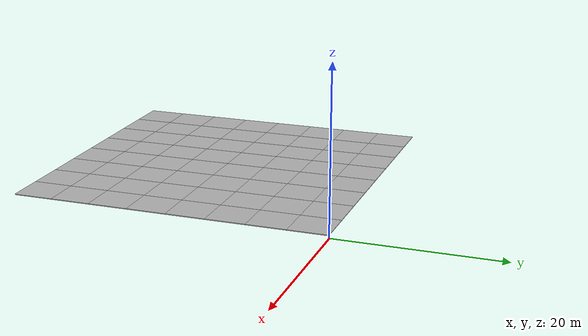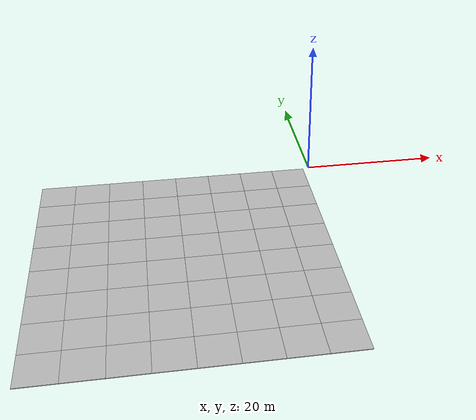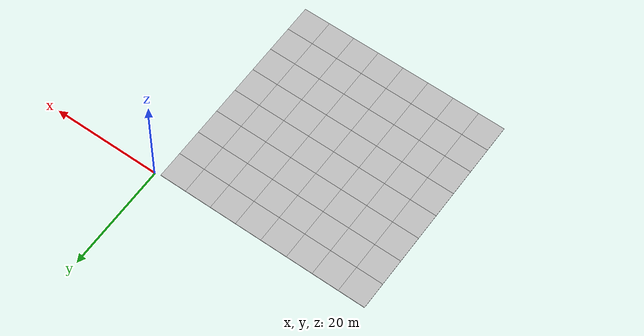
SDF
<sdf version="1.7">
 <world name="default">
  <model name="mud_plane_80x80_2">
   <model name="mud_plane_40x40">
    <model name="mud_plane_20x20">
     <model name="mud_plane">
      <static>1</static>
      <link name="link">
       <collision name="collision"><geometry><box><size>10 10 0.1</size></box></geometry></collision>
       <visual name="visual_1">
        <pose>-2.5 2.5 -0.05 0 -0 0</pose>
        <cast_shadows>0</cast_shadows>
        <geometry><box><size>5 5 0.1</size></box></geometry>
        <material>
         <script>
          <uri>model://mud_plane/materials/scripts</uri>
          <uri>model://mud_plane/materials/textures</uri>
          <name>vrc/mud</name>
         </script>
        </material>
       </visual>
       <visual name="visual_2">
        <pose>2.5 2.5 -0.05 0 -0 0</pose>
        <cast_shadows>0</cast_shadows>
        <geometry><box><size>5 5 0.1</size></box></geometry>
        <material>
         <script>
          <uri>model://mud_plane/materials/scripts</uri>
          <uri>model://mud_plane/materials/textures</uri>
          <name>vrc/mud</name>
         </script>
        </material>
       </visual>
       <visual name="visual_3">
        <pose>2.5 -2.5 -0.05 0 -0 0</pose>
        <cast_shadows>0</cast_shadows>
        <geometry><box><size>5 5 0.1</size></box></geometry>
        <material>
         <script>
          <uri>model://mud_plane/materials/scripts</uri>
          <uri>model://mud_plane/materials/textures</uri>
          <name>vrc/mud</name>
         </script>
        </material>
       </visual>
       <visual name="visual_4">
        <pose>-2.5 -2.5 -0.05 0 -0 0</pose>
        <cast_shadows>0</cast_shadows>
        <geometry><box><size>5 5 0.1</size></box></geometry>
        <material>
         <script>
          <uri>model://mud_plane/materials/scripts</uri>
          <uri>model://mud_plane/materials/textures</uri>
          <name>vrc/mud</name>
         </script>
        </material>
       </visual>
      </link>
      <pose>-4.99986 -4.99991 0 0 -0 0</pose>
     </model>
     <model name="mud_plane_0">
      <static>1</static>
      <link name="link">
       <collision name="collision"><geometry><box><size>10 10 0.1</size></box></geometry></collision>
       <visual name="visual_1">
        <pose>-2.5 2.5 -0.05 0 -0 0</pose>
        <cast_shadows>0</cast_shadows>
        <geometry><box><size>5 5 0.1</size></box></geometry>
        <material>
         <script>
          <uri>model://mud_plane/materials/scripts</uri>
          <uri>model://mud_plane/materials/textures</uri>
          <name>vrc/mud</name>
         </script>
        </material>
       </visual>
       <visual name="visual_2">
        <pose>2.5 2.5 -0.05 0 -0 0</pose>
        <cast_shadows>0</cast_shadows>
        <geometry><box><size>5 5 0.1</size></box></geometry>
        <material>
         <script>
          <uri>model://mud_plane/materials/scripts</uri>
          <uri>model://mud_plane/materials/textures</uri>
          <name>vrc/mud</name>
         </script>
        </material>
       </visual>
       <visual name="visual_3">
        <pose>2.5 -2.5 -0.05 0 -0 0</pose>
        <cast_shadows>0</cast_shadows>
        <geometry><box><size>5 5 0.1</size></box></geometry>
        <material>
         <script>
          <uri>model://mud_plane/materials/scripts</uri>
          <uri>model://mud_plane/materials/textures</uri>
          <name>vrc/mud</name>
         </script>
        </material>
       </visual>
       <visual name="visual_4">
        <pose>-2.5 -2.5 -0.05 0 -0 0</pose>
        <cast_shadows>0</cast_shadows>
        <geometry><box><size>5 5 0.1</size></box></geometry>
        <material>
         <script>
          <uri>model://mud_plane/materials/scripts</uri>
          <uri>model://mud_plane/materials/textures</uri>
          <name>vrc/mud</name>
         </script>
        </material>
       </visual>
      </link>
      <pose>-4.99946 4.99954 0 0 -0 0</pose>
     </model>
     <model name="mud_plane_1">
      <static>1</static>
      <link name="link">
       <collision name="collision"><geometry><box><size>10 10 0.1</size></box></geometry></collision>
       <visual name="visual_1">
        <pose>-2.5 2.5 -0.05 0 -0 0</pose>
        <cast_shadows>0</cast_shadows>
        <geometry><box><size>5 5 0.1</size></box></geometry>
        <material>
         <script>
          <uri>model://mud_plane/materials/scripts</uri>
          <uri>model://mud_plane/materials/textures</uri>
          <name>vrc/mud</name>
         </script>
        </material>
       </visual>
       <visual name="visual_2">
        <pose>2.5 2.5 -0.05 0 -0 0</pose>
        <cast_shadows>0</cast_shadows>
        <geometry><box><size>5 5 0.1</size></box></geometry>
        <material>
         <script>
          <uri>model://mud_plane/materials/scripts</uri>
          <uri>model://mud_plane/materials/textures</uri>
          <name>vrc/mud</name>
         </script>
        </material>
       </visual>
       <visual name="visual_3">
        <pose>2.5 -2.5 -0.05 0 -0 0</pose>
        <cast_shadows>0</cast_shadows>
        <geometry><box><size>5 5 0.1</size></box></geometry>
        <material>
         <script>
          <uri>model://mud_plane/materials/scripts</uri>
          <uri>model://mud_plane/materials/textures</uri>
          <name>vrc/mud</name>
         </script>
        </material>
       </visual>
       <visual name="visual_4">
        <pose>-2.5 -2.5 -0.05 0 -0 0</pose>
        <cast_shadows>0</cast_shadows>
        <geometry><box><size>5 5 0.1</size></box></geometry>
        <material>
         <script>
          <uri>model://mud_plane/materials/scripts</uri>
          <uri>model://mud_plane/materials/textures</uri>
          <name>vrc/mud</name>
         </script>
        </material>
       </visual>
      </link>
      <pose>4.99964 -4.99949 0 0 -0 0</pose>
     </model>
     <model name="mud_plane_2">
      <static>1</static>
      <link name="link">
       <collision name="collision"><geometry><box><size>10 10 0.1</size></box></geometry></collision>
       <visual name="visual_1">
        <pose>-2.5 2.5 -0.05 0 -0 0</pose>
        <cast_shadows>0</cast_shadows>
        <geometry><box><size>5 5 0.1</size></box></geometry>
        <material>
         <script>
          <uri>model://mud_plane/materials/scripts</uri>
          <uri>model://mud_plane/materials/textures</uri>
          <name>vrc/mud</name>
         </script>
        </material>
       </visual>
       <visual name="visual_2">
        <pose>2.5 2.5 -0.05 0 -0 0</pose>
        <cast_shadows>0</cast_shadows>
        <geometry><box><size>5 5 0.1</size></box></geometry>
        <material>
         <script>
          <uri>model://mud_plane/materials/scripts</uri>
          <uri>model://mud_plane/materials/textures</uri>
          <name>vrc/mud</name>
         </script>
        </material>
       </visual>
       <visual name="visual_3">
        <pose>2.5 -2.5 -0.05 0 -0 0</pose>
        <cast_shadows>0</cast_shadows>
        <geometry><box><size>5 5 0.1</size></box></geometry>
        <material>
         <script>
          <uri>model://mud_plane/materials/scripts</uri>
          <uri>model://mud_plane/materials/textures</uri>
          <name>vrc/mud</name>
         </script>
        </material>
       </visual>
       <visual name="visual_4">
        <pose>-2.5 -2.5 -0.05 0 -0 0</pose>
        <cast_shadows>0</cast_shadows>
        <geometry><box><size>5 5 0.1</size></box></geometry>
        <material>
         <script>
          <uri>model://mud_plane/materials/scripts</uri>
          <uri>model://mud_plane/materials/textures</uri>
          <name>vrc/mud</name>
         </script>
        </material>
       </visual>
      </link>
      <pose>4.99967 4.99986 0 0 -0 0</pose>
     </model>
     <static>0</static>
     <pose>-9.99895 9.99843 0 0 -0 0</pose>
    </model>
    <model name="mud_plane_20x20_0">
     <model name="mud_plane">
      <static>1</static>
      <link name="link">
       <collision name="collision"><geometry><box><size>10 10 0.1</size></box></geometry></collision>
       <visual name="visual_1">
        <pose>-2.5 2.5 -0.05 0 -0 0</pose>
        <cast_shadows>0</cast_shadows>
        <geometry><box><size>5 5 0.1</size></box></geometry>
        <material>
         <script>
          <uri>model://mud_plane/materials/scripts</uri>
          <uri>model://mud_plane/materials/textures</uri>
          <name>vrc/mud</name>
         </script>
        </material>
       </visual>
       <visual name="visual_2">
        <pose>2.5 2.5 -0.05 0 -0 0</pose>
        <cast_shadows>0</cast_shadows>
        <geometry><box><size>5 5 0.1</size></box></geometry>
        <material>
         <script>
          <uri>model://mud_plane/materials/scripts</uri>
          <uri>model://mud_plane/materials/textures</uri>
          <name>vrc/mud</name>
         </script>
        </material>
       </visual>
       <visual name="visual_3">
        <pose>2.5 -2.5 -0.05 0 -0 0</pose>
        <cast_shadows>0</cast_shadows>
        <geometry><box><size>5 5 0.1</size></box></geometry>
        <material>
         <script>
          <uri>model://mud_plane/materials/scripts</uri>
          <uri>model://mud_plane/materials/textures</uri>
          <name>vrc/mud</name>
         </script>
        </material>
       </visual>
       <visual name="visual_4">
        <pose>-2.5 -2.5 -0.05 0 -0 0</pose>
        <cast_shadows>0</cast_shadows>
        <geometry><box><size>5 5 0.1</size></box></geometry>
        <material>
         <script>
          <uri>model://mud_plane/materials/scripts</uri>
          <uri>model://mud_plane/materials/textures</uri>
          <name>vrc/mud</name>
         </script>
        </material>
       </visual>
      </link>
      <pose>-4.99986 -4.99991 0 0 -0 0</pose>
     </model>
     <model name="mud_plane_0">
      <static>1</static>
      <link name="link">
       <collision name="collision"><geometry><box><size>10 10 0.1</size></box></geometry></collision>
       <visual name="visual_1">
        <pose>-2.5 2.5 -0.05 0 -0 0</pose>
        <cast_shadows>0</cast_shadows>
        <geometry><box><size>5 5 0.1</size></box></geometry>
        <material>
         <script>
          <uri>model://mud_plane/materials/scripts</uri>
          <uri>model://mud_plane/materials/textures</uri>
          <name>vrc/mud</name>
         </script>
        </material>
       </visual>
       <visual name="visual_2">
        <pose>2.5 2.5 -0.05 0 -0 0</pose>
        <cast_shadows>0</cast_shadows>
        <geometry><box><size>5 5 0.1</size></box></geometry>
        <material>
         <script>
          <uri>model://mud_plane/materials/scripts</uri>
          <uri>model://mud_plane/materials/textures</uri>
          <name>vrc/mud</name>
         </script>
        </material>
       </visual>
       <visual name="visual_3">
        <pose>2.5 -2.5 -0.05 0 -0 0</pose>
        <cast_shadows>0</cast_shadows>
        <geometry><box><size>5 5 0.1</size></box></geometry>
        <material>
         <script>
          <uri>model://mud_plane/materials/scripts</uri>
          <uri>model://mud_plane/materials/textures</uri>
          <name>vrc/mud</name>
         </script>
        </material>
       </visual>
       <visual name="visual_4">
        <pose>-2.5 -2.5 -0.05 0 -0 0</pose>
        <cast_shadows>0</cast_shadows>
        <geometry><box><size>5 5 0.1</size></box></geometry>
        <material>
         <script>
          <uri>model://mud_plane/materials/scripts</uri>
          <uri>model://mud_plane/materials/textures</uri>
          <name>vrc/mud</name>
         </script>
        </material>
       </visual>
      </link>
      <pose>-4.99946 4.99954 0 0 -0 0</pose>
     </model>
     <model name="mud_plane_1">
      <static>1</static>
      <link name="link">
       <collision name="collision"><geometry><box><size>10 10 0.1</size></box></geometry></collision>
       <visual name="visual_1">
        <pose>-2.5 2.5 -0.05 0 -0 0</pose>
        <cast_shadows>0</cast_shadows>
        <geometry><box><size>5 5 0.1</size></box></geometry>
        <material>
         <script>
          <uri>model://mud_plane/materials/scripts</uri>
          <uri>model://mud_plane/materials/textures</uri>
          <name>vrc/mud</name>
         </script>
        </material>
       </visual>
       <visual name="visual_2">
        <pose>2.5 2.5 -0.05 0 -0 0</pose>
        <cast_shadows>0</cast_shadows>
        <geometry><box><size>5 5 0.1</size></box></geometry>
        <material>
         <script>
          <uri>model://mud_plane/materials/scripts</uri>
          <uri>model://mud_plane/materials/textures</uri>
          <name>vrc/mud</name>
         </script>
        </material>
       </visual>
       <visual name="visual_3">
        <pose>2.5 -2.5 -0.05 0 -0 0</pose>
        <cast_shadows>0</cast_shadows>
        <geometry><box><size>5 5 0.1</size></box></geometry>
        <material>
         <script>
          <uri>model://mud_plane/materials/scripts</uri>
          <uri>model://mud_plane/materials/textures</uri>
          <name>vrc/mud</name>
         </script>
        </material>
       </visual>
       <visual name="visual_4">
        <pose>-2.5 -2.5 -0.05 0 -0 0</pose>
        <cast_shadows>0</cast_shadows>
        <geometry><box><size>5 5 0.1</size></box></geometry>
        <material>
         <script>
          <uri>model://mud_plane/materials/scripts</uri>
          <uri>model://mud_plane/materials/textures</uri>
          <name>vrc/mud</name>
         </script>
        </material>
       </visual>
      </link>
      <pose>4.99964 -4.99949 0 0 -0 0</pose>
     </model>
     <model name="mud_plane_2">
      <static>1</static>
      <link name="link">
       <collision name="collision"><geometry><box><size>10 10 0.1</size></box></geometry></collision>
       <visual name="visual_1">
        <pose>-2.5 2.5 -0.05 0 -0 0</pose>
        <cast_shadows>0</cast_shadows>
        <geometry><box><size>5 5 0.1</size></box></geometry>
        <material>
         <script>
          <uri>model://mud_plane/materials/scripts</uri>
          <uri>model://mud_plane/materials/textures</uri>
          <name>vrc/mud</name>
         </script>
        </material>
       </visual>
       <visual name="visual_2">
        <pose>2.5 2.5 -0.05 0 -0 0</pose>
        <cast_shadows>0</cast_shadows>
        <geometry><box><size>5 5 0.1</size></box></geometry>
        <material>
         <script>
          <uri>model://mud_plane/materials/scripts</uri>
          <uri>model://mud_plane/materials/textures</uri>
          <name>vrc/mud</name>
         </script>
        </material>
       </visual>
       <visual name="visual_3">
        <pose>2.5 -2.5 -0.05 0 -0 0</pose>
        <cast_shadows>0</cast_shadows>
        <geometry><box><size>5 5 0.1</size></box></geometry>
        <material>
         <script>
          <uri>model://mud_plane/materials/scripts</uri>
          <uri>model://mud_plane/materials/textures</uri>
          <name>vrc/mud</name>
         </script>
        </material>
       </visual>
       <visual name="visual_4">
        <pose>-2.5 -2.5 -0.05 0 -0 0</pose>
        <cast_shadows>0</cast_shadows>
        <geometry><box><size>5 5 0.1</size></box></geometry>
        <material>
         <script>
          <uri>model://mud_plane/materials/scripts</uri>
          <uri>model://mud_plane/materials/textures</uri>
          <name>vrc/mud</name>
         </script>
        </material>
       </visual>
      </link>
      <pose>4.99967 4.99986 0 0 -0 0</pose>
     </model>
     <static>0</static>
     <pose>9.99933 9.9997 0 0 -0 0</pose>
    </model>
    <model name="mud_plane_20x20_1">
     <model name="mud_plane">
      <static>1</static>
      <link name="link">
       <collision name="collision"><geometry><box><size>10 10 0.1</size></box></geometry></collision>
       <visual name="visual_1">
        <pose>-2.5 2.5 -0.05 0 -0 0</pose>
        <cast_shadows>0</cast_shadows>
        <geometry><box><size>5 5 0.1</size></box></geometry>
        <material>
         <script>
          <uri>model://mud_plane/materials/scripts</uri>
          <uri>model://mud_plane/materials/textures</uri>
          <name>vrc/mud</name>
         </script>
        </material>
       </visual>
       <visual name="visual_2">
        <pose>2.5 2.5 -0.05 0 -0 0</pose>
        <cast_shadows>0</cast_shadows>
        <geometry><box><size>5 5 0.1</size></box></geometry>
        <material>
         <script>
          <uri>model://mud_plane/materials/scripts</uri>
          <uri>model://mud_plane/materials/textures</uri>
          <name>vrc/mud</name>
         </script>
        </material>
       </visual>
       <visual name="visual_3">
        <pose>2.5 -2.5 -0.05 0 -0 0</pose>
        <cast_shadows>0</cast_shadows>
        <geometry><box><size>5 5 0.1</size></box></geometry>
        <material>
         <script>
          <uri>model://mud_plane/materials/scripts</uri>
          <uri>model://mud_plane/materials/textures</uri>
          <name>vrc/mud</name>
         </script>
        </material>
       </visual>
       <visual name="visual_4">
        <pose>-2.5 -2.5 -0.05 0 -0 0</pose>
        <cast_shadows>0</cast_shadows>
        <geometry><box><size>5 5 0.1</size></box></geometry>
        <material>
         <script>
          <uri>model://mud_plane/materials/scripts</uri>
          <uri>model://mud_plane/materials/textures</uri>
          <name>vrc/mud</name>
         </script>
        </material>
       </visual>
      </link>
      <pose>-4.99986 -4.99991 0 0 -0 0</pose>
     </model>
     <model name="mud_plane_0">
      <static>1</static>
      <link name="link">
       <collision name="collision"><geometry><box><size>10 10 0.1</size></box></geometry></collision>
       <visual name="visual_1">
        <pose>-2.5 2.5 -0.05 0 -0 0</pose>
        <cast_shadows>0</cast_shadows>
        <geometry><box><size>5 5 0.1</size></box></geometry>
        <material>
         <script>
          <uri>model://mud_plane/materials/scripts</uri>
          <uri>model://mud_plane/materials/textures</uri>
          <name>vrc/mud</name>
         </script>
        </material>
       </visual>
       <visual name="visual_2">
        <pose>2.5 2.5 -0.05 0 -0 0</pose>
        <cast_shadows>0</cast_shadows>
        <geometry><box><size>5 5 0.1</size></box></geometry>
        <material>
         <script>
          <uri>model://mud_plane/materials/scripts</uri>
          <uri>model://mud_plane/materials/textures</uri>
          <name>vrc/mud</name>
         </script>
        </material>
       </visual>
       <visual name="visual_3">
        <pose>2.5 -2.5 -0.05 0 -0 0</pose>
        <cast_shadows>0</cast_shadows>
        <geometry><box><size>5 5 0.1</size></box></geometry>
        <material>
         <script>
          <uri>model://mud_plane/materials/scripts</uri>
          <uri>model://mud_plane/materials/textures</uri>
          <name>vrc/mud</name>
         </script>
        </material>
       </visual>
       <visual name="visual_4">
        <pose>-2.5 -2.5 -0.05 0 -0 0</pose>
        <cast_shadows>0</cast_shadows>
        <geometry><box><size>5 5 0.1</size></box></geometry>
        <material>
         <script>
          <uri>model://mud_plane/materials/scripts</uri>
          <uri>model://mud_plane/materials/textures</uri>
          <name>vrc/mud</name>
         </script>
        </material>
       </visual>
      </link>
      <pose>-4.99946 4.99954 0 0 -0 0</pose>
     </model>
     <model name="mud_plane_1">
      <static>1</static>
      <link name="link">
       <collision name="collision"><geometry><box><size>10 10 0.1</size></box></geometry></collision>
       <visual name="visual_1">
        <pose>-2.5 2.5 -0.05 0 -0 0</pose>
        <cast_shadows>0</cast_shadows>
        <geometry><box><size>5 5 0.1</size></box></geometry>
        <material>
         <script>
          <uri>model://mud_plane/materials/scripts</uri>
          <uri>model://mud_plane/materials/textures</uri>
          <name>vrc/mud</name>
         </script>
        </material>
       </visual>
       <visual name="visual_2">
        <pose>2.5 2.5 -0.05 0 -0 0</pose>
        <cast_shadows>0</cast_shadows>
        <geometry><box><size>5 5 0.1</size></box></geometry>
        <material>
         <script>
          <uri>model://mud_plane/materials/scripts</uri>
          <uri>model://mud_plane/materials/textures</uri>
          <name>vrc/mud</name>
         </script>
        </material>
       </visual>
       <visual name="visual_3">
        <pose>2.5 -2.5 -0.05 0 -0 0</pose>
        <cast_shadows>0</cast_shadows>
        <geometry><box><size>5 5 0.1</size></box></geometry>
        <material>
         <script>
          <uri>model://mud_plane/materials/scripts</uri>
          <uri>model://mud_plane/materials/textures</uri>
          <name>vrc/mud</name>
         </script>
        </material>
       </visual>
       <visual name="visual_4">
        <pose>-2.5 -2.5 -0.05 0 -0 0</pose>
        <cast_shadows>0</cast_shadows>
        <geometry><box><size>5 5 0.1</size></box></geometry>
        <material>
         <script>
          <uri>model://mud_plane/materials/scripts</uri>
          <uri>model://mud_plane/materials/textures</uri>
          <name>vrc/mud</name>
         </script>
        </material>
       </visual>
      </link>
      <pose>4.99964 -4.99949 0 0 -0 0</pose>
     </model>
     <model name="mud_plane_2">
      <static>1</static>
      <link name="link">
       <collision name="collision"><geometry><box><size>10 10 0.1</size></box></geometry></collision>
       <visual name="visual_1">
        <pose>-2.5 2.5 -0.05 0 -0 0</pose>
        <cast_shadows>0</cast_shadows>
        <geometry><box><size>5 5 0.1</size></box></geometry>
        <material>
         <script>
          <uri>model://mud_plane/materials/scripts</uri>
          <uri>model://mud_plane/materials/textures</uri>
          <name>vrc/mud</name>
         </script>
        </material>
       </visual>
       <visual name="visual_2">
        <pose>2.5 2.5 -0.05 0 -0 0</pose>
        <cast_shadows>0</cast_shadows>
        <geometry><box><size>5 5 0.1</size></box></geometry>
        <material>
         <script>
          <uri>model://mud_plane/materials/scripts</uri>
          <uri>model://mud_plane/materials/textures</uri>
          <name>vrc/mud</name>
         </script>
        </material>
       </visual>
       <visual name="visual_3">
        <pose>2.5 -2.5 -0.05 0 -0 0</pose>
        <cast_shadows>0</cast_shadows>
        <geometry><box><size>5 5 0.1</size></box></geometry>
        <material>
         <script>
          <uri>model://mud_plane/materials/scripts</uri>
          <uri>model://mud_plane/materials/textures</uri>
          <name>vrc/mud</name>
         </script>
        </material>
       </visual>
       <visual name="visual_4">
        <pose>-2.5 -2.5 -0.05 0 -0 0</pose>
        <cast_shadows>0</cast_shadows>
        <geometry><box><size>5 5 0.1</size></box></geometry>
        <material>
         <script>
          <uri>model://mud_plane/materials/scripts</uri>
          <uri>model://mud_plane/materials/textures</uri>
          <name>vrc/mud</name>
         </script>
        </material>
       </visual>
      </link>
      <pose>4.99967 4.99986 0 0 -0 0</pose>
     </model>
     <static>0</static>
     <pose>9.9993 -9.99877 0 0 -0 0</pose>
    </model>
    <model name="mud_plane_20x20_2">
     <model name="mud_plane">
      <static>1</static>
      <link name="link">
       <collision name="collision"><geometry><box><size>10 10 0.1</size></box></geometry></collision>
       <visual name="visual_1">
        <pose>-2.5 2.5 -0.05 0 -0 0</pose>
        <cast_shadows>0</cast_shadows>
        <geometry><box><size>5 5 0.1</size></box></geometry>
        <material>
         <script>
          <uri>model://mud_plane/materials/scripts</uri>
          <uri>model://mud_plane/materials/textures</uri>
          <name>vrc/mud</name>
         </script>
        </material>
       </visual>
       <visual name="visual_2">
        <pose>2.5 2.5 -0.05 0 -0 0</pose>
        <cast_shadows>0</cast_shadows>
        <geometry><box><size>5 5 0.1</size></box></geometry>
        <material>
         <script>
          <uri>model://mud_plane/materials/scripts</uri>
          <uri>model://mud_plane/materials/textures</uri>
          <name>vrc/mud</name>
         </script>
        </material>
       </visual>
       <visual name="visual_3">
        <pose>2.5 -2.5 -0.05 0 -0 0</pose>
        <cast_shadows>0</cast_shadows>
        <geometry><box><size>5 5 0.1</size></box></geometry>
        <material>
         <script>
          <uri>model://mud_plane/materials/scripts</uri>
          <uri>model://mud_plane/materials/textures</uri>
          <name>vrc/mud</name>
         </script>
        </material>
       </visual>
       <visual name="visual_4">
        <pose>-2.5 -2.5 -0.05 0 -0 0</pose>
        <cast_shadows>0</cast_shadows>
        <geometry><box><size>5 5 0.1</size></box></geometry>
        <material>
         <script>
          <uri>model://mud_plane/materials/scripts</uri>
          <uri>model://mud_plane/materials/textures</uri>
          <name>vrc/mud</name>
         </script>
        </material>
       </visual>
      </link>
      <pose>-4.99986 -4.99991 0 0 -0 0</pose>
     </model>
     <model name="mud_plane_0">
      <static>1</static>
      <link name="link">
       <collision name="collision"><geometry><box><size>10 10 0.1</size></box></geometry></collision>
       <visual name="visual_1">
        <pose>-2.5 2.5 -0.05 0 -0 0</pose>
        <cast_shadows>0</cast_shadows>
        <geometry><box><size>5 5 0.1</size></box></geometry>
        <material>
         <script>
          <uri>model://mud_plane/materials/scripts</uri>
          <uri>model://mud_plane/materials/textures</uri>
          <name>vrc/mud</name>
         </script>
        </material>
       </visual>
       <visual name="visual_2">
        <pose>2.5 2.5 -0.05 0 -0 0</pose>
        <cast_shadows>0</cast_shadows>
        <geometry><box><size>5 5 0.1</size></box></geometry>
        <material>
         <script>
          <uri>model://mud_plane/materials/scripts</uri>
          <uri>model://mud_plane/materials/textures</uri>
          <name>vrc/mud</name>
         </script>
        </material>
       </visual>
       <visual name="visual_3">
        <pose>2.5 -2.5 -0.05 0 -0 0</pose>
        <cast_shadows>0</cast_shadows>
        <geometry><box><size>5 5 0.1</size></box></geometry>
        <material>
         <script>
          <uri>model://mud_plane/materials/scripts</uri>
          <uri>model://mud_plane/materials/textures</uri>
          <name>vrc/mud</name>
         </script>
        </material>
       </visual>
       <visual name="visual_4">
        <pose>-2.5 -2.5 -0.05 0 -0 0</pose>
        <cast_shadows>0</cast_shadows>
        <geometry><box><size>5 5 0.1</size></box></geometry>
        <material>
         <script>
          <uri>model://mud_plane/materials/scripts</uri>
          <uri>model://mud_plane/materials/textures</uri>
          <name>vrc/mud</name>
         </script>
        </material>
       </visual>
      </link>
      <pose>-4.99946 4.99954 0 0 -0 0</pose>
     </model>
     <model name="mud_plane_1">
      <static>1</static>
      <link name="link">
       <collision name="collision"><geometry><box><size>10 10 0.1</size></box></geometry></collision>
       <visual name="visual_1">
        <pose>-2.5 2.5 -0.05 0 -0 0</pose>
        <cast_shadows>0</cast_shadows>
        <geometry><box><size>5 5 0.1</size></box></geometry>
        <material>
         <script>
          <uri>model://mud_plane/materials/scripts</uri>
          <uri>model://mud_plane/materials/textures</uri>
          <name>vrc/mud</name>
         </script>
        </material>
       </visual>
       <visual name="visual_2">
        <pose>2.5 2.5 -0.05 0 -0 0</pose>
        <cast_shadows>0</cast_shadows>
        <geometry><box><size>5 5 0.1</size></box></geometry>
        <material>
         <script>
          <uri>model://mud_plane/materials/scripts</uri>
          <uri>model://mud_plane/materials/textures</uri>
          <name>vrc/mud</name>
         </script>
        </material>
       </visual>
       <visual name="visual_3">
        <pose>2.5 -2.5 -0.05 0 -0 0</pose>
        <cast_shadows>0</cast_shadows>
        <geometry><box><size>5 5 0.1</size></box></geometry>
        <material>
         <script>
          <uri>model://mud_plane/materials/scripts</uri>
          <uri>model://mud_plane/materials/textures</uri>
          <name>vrc/mud</name>
         </script>
        </material>
       </visual>
       <visual name="visual_4">
        <pose>-2.5 -2.5 -0.05 0 -0 0</pose>
        <cast_shadows>0</cast_shadows>
        <geometry><box><size>5 5 0.1</size></box></geometry>
        <material>
         <script>
          <uri>model://mud_plane/materials/scripts</uri>
          <uri>model://mud_plane/materials/textures</uri>
          <name>vrc/mud</name>
         </script>
        </material>
       </visual>
      </link>
      <pose>4.99964 -4.99949 0 0 -0 0</pose>
     </model>
     <model name="mud_plane_2">
      <static>1</static>
      <link name="link">
       <collision name="collision"><geometry><box><size>10 10 0.1</size></box></geometry></collision>
       <visual name="visual_1">
        <pose>-2.5 2.5 -0.05 0 -0 0</pose>
        <cast_shadows>0</cast_shadows>
        <geometry><box><size>5 5 0.1</size></box></geometry>
        <material>
         <script>
          <uri>model://mud_plane/materials/scripts</uri>
          <uri>model://mud_plane/materials/textures</uri>
          <name>vrc/mud</name>
         </script>
        </material>
       </visual>
       <visual name="visual_2">
        <pose>2.5 2.5 -0.05 0 -0 0</pose>
        <cast_shadows>0</cast_shadows>
        <geometry><box><size>5 5 0.1</size></box></geometry>
        <material>
         <script>
          <uri>model://mud_plane/materials/scripts</uri>
          <uri>model://mud_plane/materials/textures</uri>
          <name>vrc/mud</name>
         </script>
        </material>
       </visual>
       <visual name="visual_3">
        <pose>2.5 -2.5 -0.05 0 -0 0</pose>
        <cast_shadows>0</cast_shadows>
        <geometry><box><size>5 5 0.1</size></box></geometry>
        <material>
         <script>
          <uri>model://mud_plane/materials/scripts</uri>
          <uri>model://mud_plane/materials/textures</uri>
          <name>vrc/mud</name>
         </script>
        </material>
       </visual>
       <visual name="visual_4">
        <pose>-2.5 -2.5 -0.05 0 -0 0</pose>
        <cast_shadows>0</cast_shadows>
        <geometry><box><size>5 5 0.1</size></box></geometry>
        <material>
         <script>
          <uri>model://mud_plane/materials/scripts</uri>
          <uri>model://mud_plane/materials/textures</uri>
          <name>vrc/mud</name>
         </script>
        </material>
       </visual>
      </link>
      <pose>4.99967 4.99986 0 0 -0 0</pose>
     </model>
     <static>0</static>
     <pose>-9.99969 -9.99935 0 0 -0 0</pose>
    </model>
    <static>0</static>
    <pose>19.9986 19.9995 0 0 -0 0</pose>
   </model>
   <static>0</static>
   <pose>-40.9522 -40.3255 0 0 -0 0</pose>
  </model>
 </world>
</sdf>
